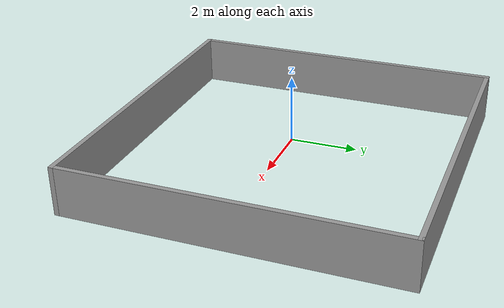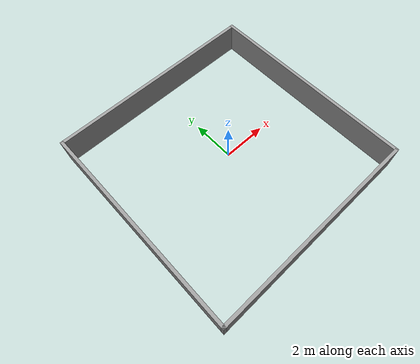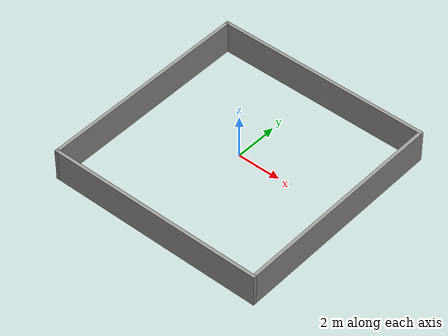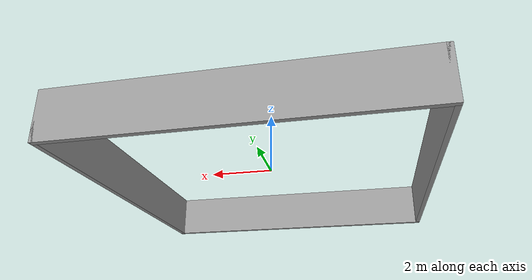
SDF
<?xml version='1.0'?>
<sdf version='1.6'>
  <model name='model10x10'>
    <pose frame=''>0.003578 0.004733 0 0 -0 0</pose>
    <link name='Wall_0'>
      <collision name='Wall_0_Collision'>
        <geometry>
          <box>
            <size>10.15 0.15 1.5</size>
          </box>
        </geometry>
        <pose frame=''>0 0 0 0 -0 0</pose>
      </collision>
      <visual name='Wall_0_Visual'>
        <pose frame=''>0 0 0 0 -0 0</pose>
        <geometry>
          <box>
            <size>10.15 0.15 1.5</size>
          </box>
        </geometry>
        <material>
          <script>
            <uri>file://media/materials/scripts/gazebo.material</uri>
            <name>Gazebo/Grey</name>
          </script>
          <ambient>1 1 1 1</ambient>
        </material>
        <meta>
          <layer>0</layer>
        </meta>
      </visual>
      <pose frame=''>-0 -5.0 0 0 -0 3.14159</pose>
    </link>
    <link name='Wall_1'>
      <collision name='Wall_1_Collision'>
        <geometry>
          <box>
            <size>10.15 0.15 1.5</size>
          </box>
        </geometry>
        <pose frame=''>0 0 0 0 -0 0</pose>
      </collision>
      <visual name='Wall_1_Visual'>
        <pose frame=''>0 0 0 0 -0 0</pose>
        <geometry>
          <box>
            <size>10.15 0.15 1.5</size>
          </box>
        </geometry>
        <material>
          <script>
            <uri>file://media/materials/scripts/gazebo.material</uri>
            <name>Gazebo/Grey</name>
          </script>
          <ambient>1 1 1 1</ambient>
        </material>
        <meta>
          <layer>0</layer>
        </meta>
      </visual>
      <pose frame=''>-5.0 -0 0 0 -0 1.5708</pose>
    </link>
    <link name='Wall_2'>
      <collision name='Wall_2_Collision'>
        <geometry>
          <box>
            <size>10.15 0.15 1.5</size>
          </box>
        </geometry>
        <pose frame=''>0 0 0 0 -0 0</pose>
      </collision>
      <visual name='Wall_2_Visual'>
        <pose frame=''>0 0 0 0 -0 0</pose>
        <geometry>
          <box>
            <size>10.15 0.15 1.5</size>
          </box>
        </geometry>
        <material>
          <script>
            <uri>file://media/materials/scripts/gazebo.material</uri>
            <name>Gazebo/Grey</name>
          </script>
          <ambient>1 1 1 1</ambient>
        </material>
        <meta>
          <layer>0</layer>
        </meta>
      </visual>
      <pose frame=''>-0 5.0 0 0 -0 0</pose>
    </link>
    <link name='Wall_3'>
      <collision name='Wall_3_Collision'>
        <geometry>
          <box>
            <size>10.15 0.15 1.5</size>
          </box>
        </geometry>
        <pose frame=''>0 0 0 0 -0 0</pose>
      </collision>
      <visual name='Wall_3_Visual'>
        <pose frame=''>0 0 0 0 -0 0</pose>
        <geometry>
          <box>
            <size>10.15 0.15 1.5</size>
          </box>
        </geometry>
        <material>
          <script>
            <uri>file://media/materials/scripts/gazebo.material</uri>
            <name>Gazebo/Grey</name>
          </script>
          <ambient>1 1 1 1</ambient>
        </material>
        <meta>
          <layer>0</layer>
        </meta>
      </visual>
      <pose frame=''>5.0 -0 0 0 -0 -1.5708</pose>
    </link>
    <static>1</static>
  </model>
</sdf>
